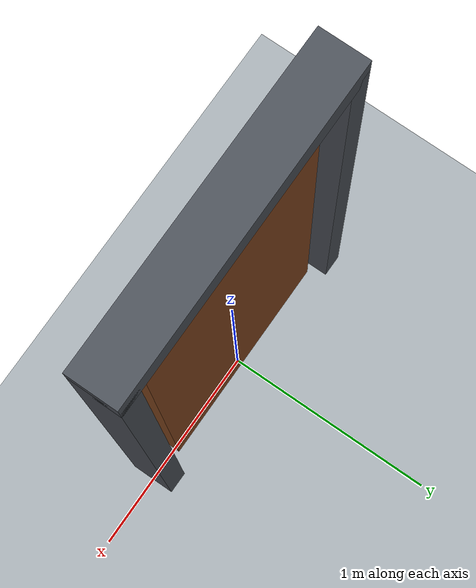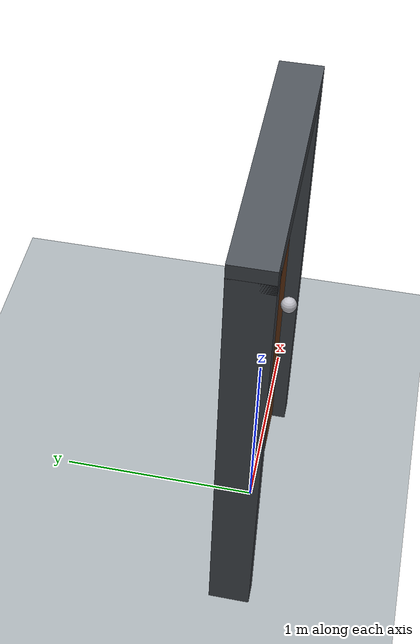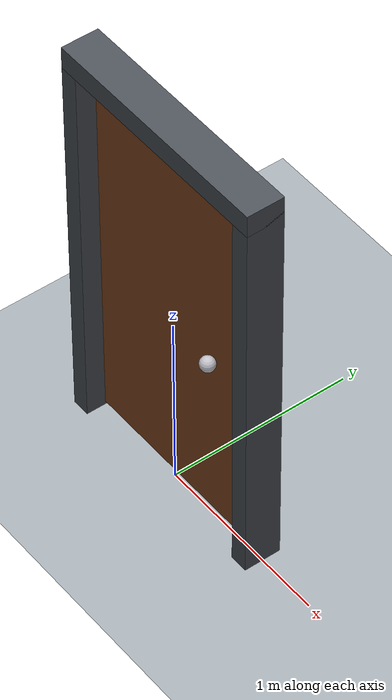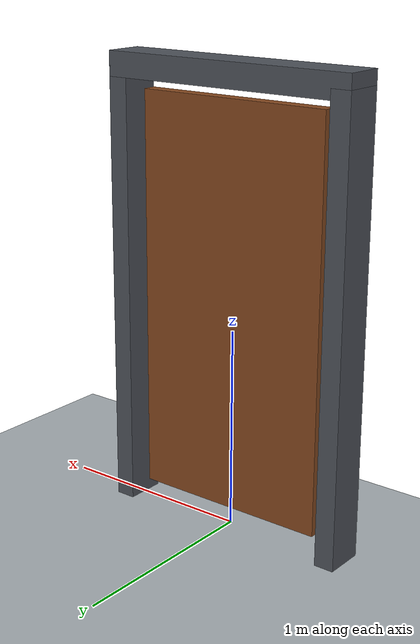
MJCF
<mujoco model="self_closing_door">
  <compiler angle="radian" autolimits="true"/>
  <option timestep="0.002" gravity="0 0 -9.81" integrator="implicitfast"/>

  <visual>
    <headlight ambient="0.35 0.35 0.35" diffuse="0.65 0.65 0.65"/>
  </visual>

  <worldbody>
    <light name="overhead_light" pos="0 -2 4" dir="0 0 -1"/>
    <geom name="floor" type="plane" pos="0 0 0" size="4 4 0.1" rgba="0.65 0.68 0.70 1"/>

    <geom name="hinge_side_jamb" type="box" pos="-0.61 0 1.1" size="0.05 0.10 1.1" rgba="0.30 0.32 0.35 1"/>
    <geom name="latch_side_jamb" type="box" pos="0.61 0 1.1" size="0.05 0.10 1.1" rgba="0.30 0.32 0.35 1"/>
    <geom name="frame_header" type="box" pos="0 0 2.21" size="0.66 0.10 0.06" rgba="0.30 0.32 0.35 1"/>

    <body name="door" pos="-0.5 0 1.1">
      <!-- A damped closer drives the door against its zero-angle stop. -->
      <joint name="hinge" type="hinge" pos="0 0 0" axis="0 0 1" limited="true" range="0 1.5" stiffness="60" springref="-0.03" damping="32" solreflimit="0.008 1" solimplimit="0.99 0.999 0.001"/>
      <geom name="door_panel" type="box" pos="0.5 0 0" size="0.5 0.035 1" mass="12" rgba="0.52 0.28 0.12 1"/>
      <geom name="door_handle" type="sphere" pos="0.85 -0.075 0" size="0.04" mass="0.1" rgba="0.75 0.75 0.78 1"/>
    </body>
  </worldbody>

  <keyframe>
    <key name="start" qpos="1.2" qvel="0"/>
  </keyframe>
</mujoco>
